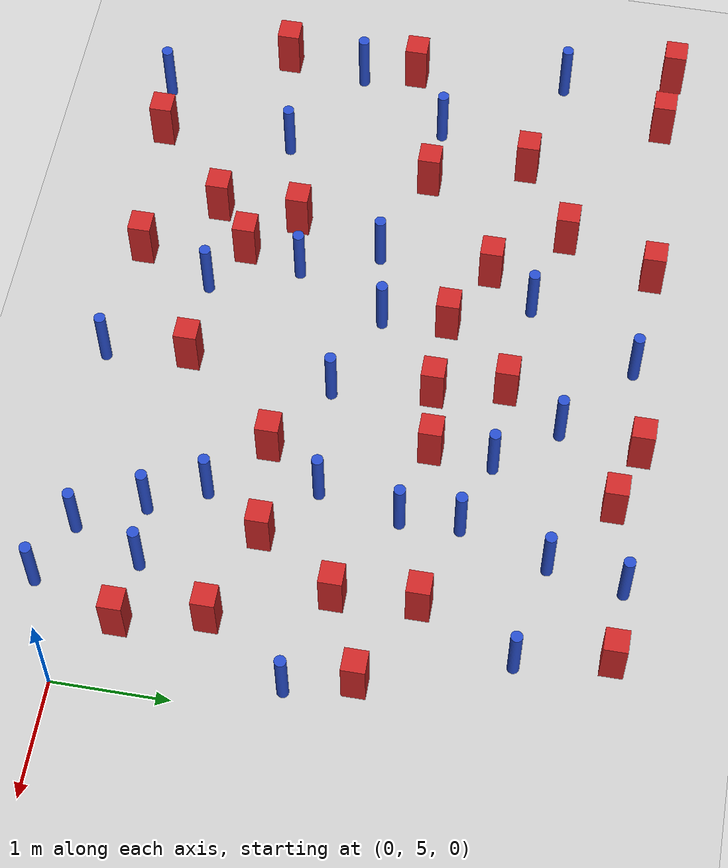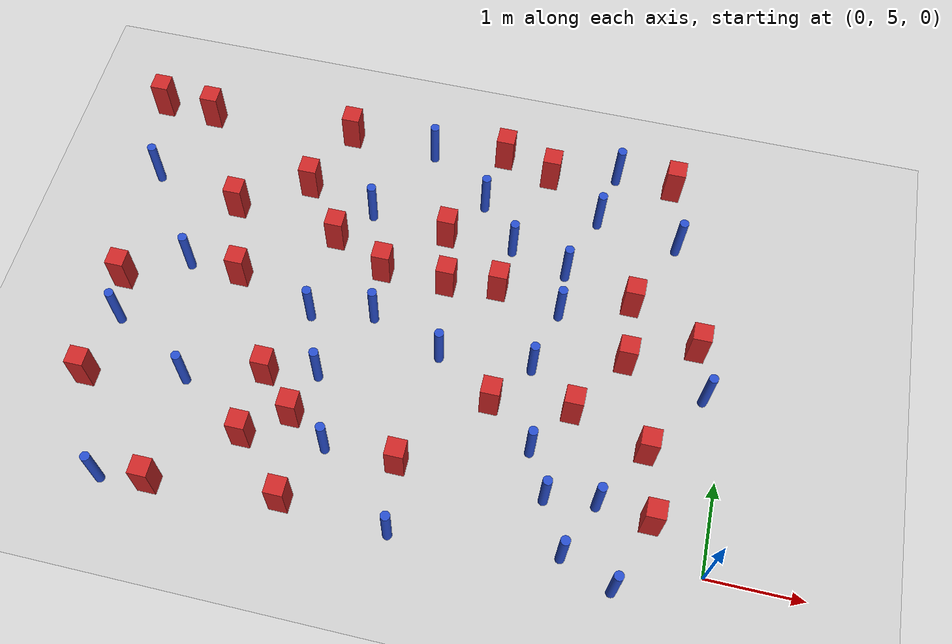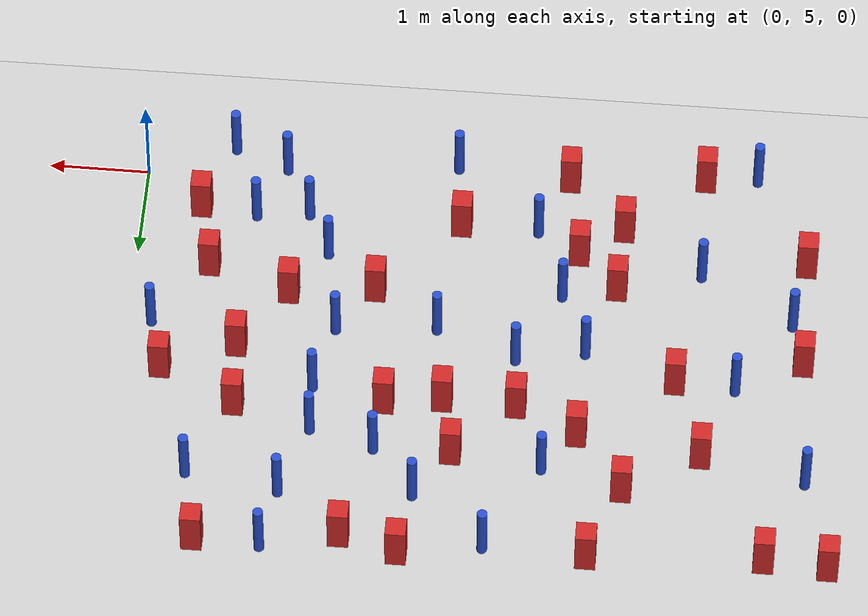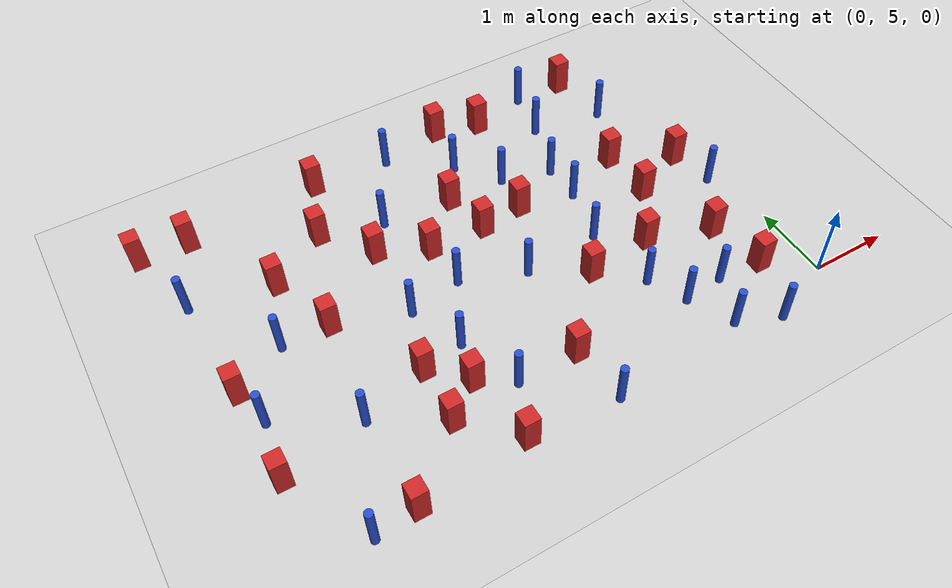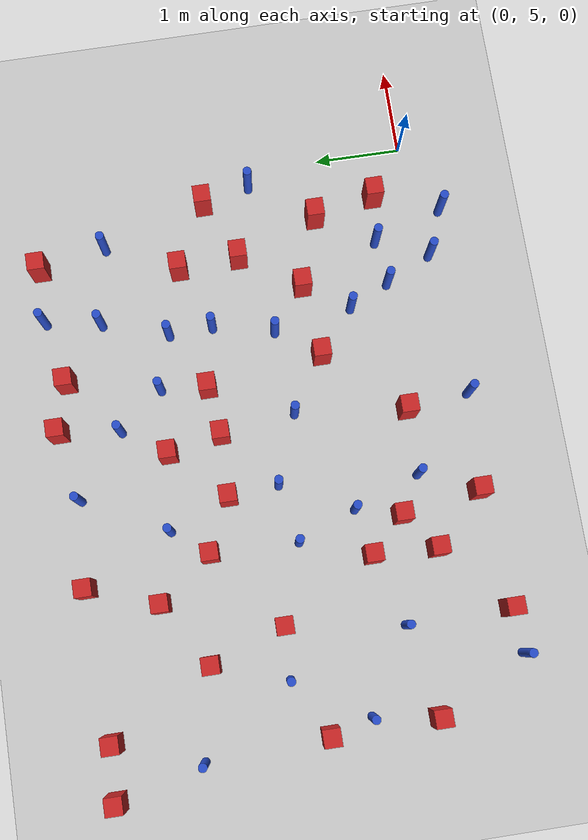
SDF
<sdf version="1.6">
 <world name="default">
  <model name="ground_plane">
   <static>1</static>
   <link name="link">
    <collision name="collision">
     <geometry><plane><normal>0 0 1</normal><size>100 100</size></plane></geometry>
     <surface><friction><ode><mu>100</mu><mu2>50</mu2></ode></friction></surface>
    </collision>
    <visual name="visual">
     <cast_shadows>0</cast_shadows>
     <geometry><plane><normal>0 0 1</normal><size>100 100</size></plane></geometry>
     <material>
      <ambient>1.0 1.0 1.0 1.0</ambient>
      <diffuse>0.8 0.8 0.8 1.0</diffuse>
      <specular>0.01 0.01 0.01 1.000000</specular>
     </material>
    </visual>
   </link>
  </model>
  <model name="square_post_obstacle7">
   <static>true</static>
   <pose>-3.18490612151 5.45710141778 8.22691968438e-08 7.2212513382e-06 -7.54495500217e-07 2.29674213826e-05</pose>
   <link name="link">
    <pose>0 0 0.25 0 -0 0</pose>
    <inertial>
     <mass>100</mass>
     <inertia>
      <ixx>0.166667</ixx>
      <ixy>0</ixy>
      <ixz>0</ixz>
      <iyy>0.166667</iyy>
      <iyz>0</iyz>
      <izz>0.166667</izz>
     </inertia>
    </inertial>
    <collision name="collision"><geometry><box><size>.2 .2 .5</size></box></geometry></collision>
    <visual name="visual">
     <geometry><box><size>.2 .2 .5</size></box></geometry>
     <material>
      <script><name>Gazebo/Red</name><uri>file://media/materials/scripts/gazebo.material</uri></script>
     </material>
    </visual>
   </link>
  </model>
  <model name="pole_obstacle12">
   <static>true</static>
   <pose>-4.51238808588 6.91465954027 2.88873142074e-08 -9.90536690842e-09 4.60219948965e-07 -1.20965994976e-07</pose>
   <link name="link">
    <pose>0 0 0.3 0 -0 0</pose>
    <inertial>
     <mass>1</mass>
     <inertia><ixx>0.145833</ixx><ixy>0</ixy><ixz>0</ixz><iyy>0.145833</iyy><iyz>0</iyz><izz>0.125</izz></inertia>
    </inertial>
    <collision name="collision">
     <geometry><cylinder><radius>0.05</radius><length>.6</length></cylinder></geometry>
    </collision>
    <visual name="visual">
     <geometry><cylinder><radius>0.05</radius><length>.6</length></cylinder></geometry>
     <material>
      <script><name>Gazebo/Blue</name><uri>file://media/materials/scripts/gazebo.material</uri></script>
     </material>
    </visual>
   </link>
  </model>
  <model name="square_post_obstacle11">
   <static>true</static>
   <pose>-4.77294782789 6.12462076641 8.22691968438e-08 7.22125133819e-06 -7.54495500217e-07 2.29674213826e-05</pose>
   <link name="link">
    <pose>0 0 0.25 0 -0 0</pose>
    <inertial>
     <mass>100</mass>
     <inertia>
      <ixx>0.166667</ixx>
      <ixy>0</ixy>
      <ixz>0</ixz>
      <iyy>0.166667</iyy>
      <iyz>0</iyz>
      <izz>0.166667</izz>
     </inertia>
    </inertial>
    <collision name="collision"><geometry><box><size>.2 .2 .5</size></box></geometry></collision>
    <visual name="visual">
     <geometry><box><size>.2 .2 .5</size></box></geometry>
     <material>
      <script><name>Gazebo/Red</name><uri>file://media/materials/scripts/gazebo.material</uri></script>
     </material>
    </visual>
   </link>
  </model>
  <model name="square_post_obstacle14">
   <static>true</static>
   <pose>-1.09752809713 7.11037284379 8.22691968438e-08 7.2212513382e-06 -7.54495500217e-07 2.29674213826e-05</pose>
   <link name="link">
    <pose>0 0 0.25 0 -0 0</pose>
    <inertial>
     <mass>100</mass>
     <inertia>
      <ixx>0.166667</ixx>
      <ixy>0</ixy>
      <ixz>0</ixz>
      <iyy>0.166667</iyy>
      <iyz>0</iyz>
      <izz>0.166667</izz>
     </inertia>
    </inertial>
    <collision name="collision"><geometry><box><size>.2 .2 .5</size></box></geometry></collision>
    <visual name="visual">
     <geometry><box><size>.2 .2 .5</size></box></geometry>
     <material>
      <script><name>Gazebo/Red</name><uri>file://media/materials/scripts/gazebo.material</uri></script>
     </material>
    </visual>
   </link>
  </model>
  <model name="pole_obstacle33">
   <static>true</static>
   <pose>-3.09936529219 4.72296170084 2.88873142074e-08 -9.90536689859e-09 4.60219948989e-07 -1.20965994961e-07</pose>
   <link name="link">
    <pose>0 0 0.3 0 -0 0</pose>
    <inertial>
     <mass>1</mass>
     <inertia><ixx>0.145833</ixx><ixy>0</ixy><ixz>0</ixz><iyy>0.145833</iyy><iyz>0</iyz><izz>0.125</izz></inertia>
    </inertial>
    <collision name="collision">
     <geometry><cylinder><radius>0.05</radius><length>.6</length></cylinder></geometry>
    </collision>
    <visual name="visual">
     <geometry><cylinder><radius>0.05</radius><length>.6</length></cylinder></geometry>
     <material>
      <script><name>Gazebo/Blue</name><uri>file://media/materials/scripts/gazebo.material</uri></script>
     </material>
    </visual>
   </link>
  </model>
  <model name="pole_obstacle35">
   <static>true</static>
   <pose>-1.39172180063 4.8766050014 2.88873142074e-08 -9.90536689852e-09 4.60219948989e-07 -1.2096599496e-07</pose>
   <link name="link">
    <pose>0 0 0.3 0 -0 0</pose>
    <inertial>
     <mass>1</mass>
     <inertia><ixx>0.145833</ixx><ixy>0</ixy><ixz>0</ixz><iyy>0.145833</iyy><iyz>0</iyz><izz>0.125</izz></inertia>
    </inertial>
    <collision name="collision">
     <geometry><cylinder><radius>0.05</radius><length>.6</length></cylinder></geometry>
    </collision>
    <visual name="visual">
     <geometry><cylinder><radius>0.05</radius><length>.6</length></cylinder></geometry>
     <material>
      <script><name>Gazebo/Blue</name><uri>file://media/materials/scripts/gazebo.material</uri></script>
     </material>
    </visual>
   </link>
  </model>
  <model name="pole_obstacle43">
   <static>true</static>
   <pose>-3.83528672196 7.04657121452 2.88873142074e-08 -9.90536692062e-09 4.60219948937e-07 -1.20965994985e-07</pose>
   <link name="link">
    <pose>0 0 0.3 0 -0 0</pose>
    <inertial>
     <mass>1</mass>
     <inertia><ixx>0.145833</ixx><ixy>0</ixy><ixz>0</ixz><iyy>0.145833</iyy><iyz>0</iyz><izz>0.125</izz></inertia>
    </inertial>
    <collision name="collision">
     <geometry><cylinder><radius>0.05</radius><length>.6</length></cylinder></geometry>
    </collision>
    <visual name="visual">
     <geometry><cylinder><radius>0.05</radius><length>.6</length></cylinder></geometry>
     <material>
      <script><name>Gazebo/Blue</name><uri>file://media/materials/scripts/gazebo.material</uri></script>
     </material>
    </visual>
   </link>
  </model>
  <model name="square_post_obstacle37">
   <static>true</static>
   <pose>-6.64771263384 6.89882902871 8.22691968438e-08 7.2212513382e-06 -7.54495500217e-07 2.29674213826e-05</pose>
   <link name="link">
    <pose>0 0 0.25 0 -0 0</pose>
    <inertial>
     <mass>100</mass>
     <inertia>
      <ixx>0.166667</ixx>
      <ixy>0</ixy>
      <ixz>0</ixz>
      <iyy>0.166667</iyy>
      <iyz>0</iyz>
      <izz>0.166667</izz>
     </inertia>
    </inertial>
    <collision name="collision"><geometry><box><size>.2 .2 .5</size></box></geometry></collision>
    <visual name="visual">
     <geometry><box><size>.2 .2 .5</size></box></geometry>
     <material>
      <script><name>Gazebo/Red</name><uri>file://media/materials/scripts/gazebo.material</uri></script>
     </material>
    </visual>
   </link>
  </model>
  <model name="pole_obstacle54">
   <static>true</static>
   <pose>-3.04042714223 6.7399696011 2.88873142074e-08 -9.90536689859e-09 4.60219948989e-07 -1.20965994961e-07</pose>
   <link name="link">
    <pose>0 0 0.3 0 -0 0</pose>
    <inertial>
     <mass>1</mass>
     <inertia><ixx>0.145833</ixx><ixy>0</ixy><ixz>0</ixz><iyy>0.145833</iyy><iyz>0</iyz><izz>0.125</izz></inertia>
    </inertial>
    <collision name="collision">
     <geometry><cylinder><radius>0.05</radius><length>.6</length></cylinder></geometry>
    </collision>
    <visual name="visual">
     <geometry><cylinder><radius>0.05</radius><length>.6</length></cylinder></geometry>
     <material>
      <script><name>Gazebo/Blue</name><uri>file://media/materials/scripts/gazebo.material</uri></script>
     </material>
    </visual>
   </link>
  </model>
  <model name="square_post_obstacle41">
   <static>true</static>
   <pose>-3.16131381034 7.61083727606 8.22691968438e-08 7.2212513382e-06 -7.54495500217e-07 2.29674213826e-05</pose>
   <link name="link">
    <pose>0 0 0.25 0 -0 0</pose>
    <inertial>
     <mass>100</mass>
     <inertia>
      <ixx>0.166667</ixx>
      <ixy>0</ixy>
      <ixz>0</ixz>
      <iyy>0.166667</iyy>
      <iyz>0</iyz>
      <izz>0.166667</izz>
     </inertia>
    </inertial>
    <collision name="collision"><geometry><box><size>.2 .2 .5</size></box></geometry></collision>
    <visual name="visual">
     <geometry><box><size>.2 .2 .5</size></box></geometry>
     <material>
      <script><name>Gazebo/Red</name><uri>file://media/materials/scripts/gazebo.material</uri></script>
     </material>
    </visual>
   </link>
  </model>
  <model name="pole_obstacle59">
   <static>true</static>
   <pose>-1.90369599812 8.03941260655 2.88873142074e-08 -9.90536689535e-09 4.60219948996e-07 -1.20965994956e-07</pose>
   <link name="link">
    <pose>0 0 0.3 0 -0 0</pose>
    <inertial>
     <mass>1</mass>
     <inertia><ixx>0.145833</ixx><ixy>0</ixy><ixz>0</ixz><iyy>0.145833</iyy><iyz>0</iyz><izz>0.125</izz></inertia>
    </inertial>
    <collision name="collision">
     <geometry><cylinder><radius>0.05</radius><length>.6</length></cylinder></geometry>
    </collision>
    <visual name="visual">
     <geometry><cylinder><radius>0.05</radius><length>.6</length></cylinder></geometry>
     <material>
      <script><name>Gazebo/Blue</name><uri>file://media/materials/scripts/gazebo.material</uri></script>
     </material>
    </visual>
   </link>
  </model>
  <model name="square_post_obstacle46">
   <static>true</static>
   <pose>-4.49032326442 7.92162597842 8.22691968438e-08 7.22125133819e-06 -7.54495500217e-07 2.29674213826e-05</pose>
   <link name="link">
    <pose>0 0 0.25 0 -0 0</pose>
    <inertial>
     <mass>100</mass>
     <inertia>
      <ixx>0.166667</ixx>
      <ixy>0</ixy>
      <ixz>0</ixz>
      <iyy>0.166667</iyy>
      <iyz>0</iyz>
      <izz>0.166667</izz>
     </inertia>
    </inertial>
    <collision name="collision"><geometry><box><size>.2 .2 .5</size></box></geometry></collision>
    <visual name="visual">
     <geometry><box><size>.2 .2 .5</size></box></geometry>
     <material>
      <script><name>Gazebo/Red</name><uri>file://media/materials/scripts/gazebo.material</uri></script>
     </material>
    </visual>
   </link>
  </model>
  <model name="square_post_obstacle54">
   <static>true</static>
   <pose>-0.90291956021 9.43107449804 8.22691968438e-08 7.22125133819e-06 -7.54495500217e-07 2.29674213826e-05</pose>
   <link name="link">
    <pose>0 0 0.25 0 -0 0</pose>
    <inertial>
     <mass>100</mass>
     <inertia>
      <ixx>0.166667</ixx>
      <ixy>0</ixy>
      <ixz>0</ixz>
      <iyy>0.166667</iyy>
      <iyz>0</iyz>
      <izz>0.166667</izz>
     </inertia>
    </inertial>
    <collision name="collision"><geometry><box><size>.2 .2 .5</size></box></geometry></collision>
    <visual name="visual">
     <geometry><box><size>.2 .2 .5</size></box></geometry>
     <material>
      <script><name>Gazebo/Red</name><uri>file://media/materials/scripts/gazebo.material</uri></script>
     </material>
    </visual>
   </link>
  </model>
  <model name="square_post_obstacle55">
   <static>true</static>
   <pose>-5.70569505835 8.08036171326 8.22691968438e-08 7.22125133819e-06 -7.54495500217e-07 2.29674213826e-05</pose>
   <link name="link">
    <pose>0 0 0.25 0 -0 0</pose>
    <inertial>
     <mass>100</mass>
     <inertia>
      <ixx>0.166667</ixx>
      <ixy>0</ixy>
      <ixz>0</ixz>
      <iyy>0.166667</iyy>
      <iyz>0</iyz>
      <izz>0.166667</izz>
     </inertia>
    </inertial>
    <collision name="collision"><geometry><box><size>.2 .2 .5</size></box></geometry></collision>
    <visual name="visual">
     <geometry><box><size>.2 .2 .5</size></box></geometry>
     <material>
      <script><name>Gazebo/Red</name><uri>file://media/materials/scripts/gazebo.material</uri></script>
     </material>
    </visual>
   </link>
  </model>
  <model name="square_post_obstacle59">
   <static>true</static>
   <pose>-6.62776394424 5.68750478584 8.22691968438e-08 7.2212513382e-06 -7.54495500217e-07 2.29674213826e-05</pose>
   <link name="link">
    <pose>0 0 0.25 0 -0 0</pose>
    <inertial>
     <mass>100</mass>
     <inertia>
      <ixx>0.166667</ixx>
      <ixy>0</ixy>
      <ixz>0</ixz>
      <iyy>0.166667</iyy>
      <iyz>0</iyz>
      <izz>0.166667</izz>
     </inertia>
    </inertial>
    <collision name="collision"><geometry><box><size>.2 .2 .5</size></box></geometry></collision>
    <visual name="visual">
     <geometry><box><size>.2 .2 .5</size></box></geometry>
     <material>
      <script><name>Gazebo/Red</name><uri>file://media/materials/scripts/gazebo.material</uri></script>
     </material>
    </visual>
   </link>
  </model>
  <model name="square_post_obstacle60">
   <static>true</static>
   <pose>-1.54926674919 6.42020498081 8.22691968438e-08 7.2212513382e-06 -7.54495500217e-07 2.29674213826e-05</pose>
   <link name="link">
    <pose>0 0 0.25 0 -0 0</pose>
    <inertial>
     <mass>100</mass>
     <inertia>
      <ixx>0.166667</ixx>
      <ixy>0</ixy>
      <ixz>0</ixz>
      <iyy>0.166667</iyy>
      <iyz>0</iyz>
      <izz>0.166667</izz>
     </inertia>
    </inertial>
    <collision name="collision"><geometry><box><size>.2 .2 .5</size></box></geometry></collision>
    <visual name="visual">
     <geometry><box><size>.2 .2 .5</size></box></geometry>
     <material>
      <script><name>Gazebo/Red</name><uri>file://media/materials/scripts/gazebo.material</uri></script>
     </material>
    </visual>
   </link>
  </model>
  <model name="square_post_obstacle61">
   <static>true</static>
   <pose>-2.86738119682 9.43937926465 8.22691968438e-08 7.22125133819e-06 -7.54495500217e-07 2.29674213826e-05</pose>
   <link name="link">
    <pose>0 0 0.25 0 -0 0</pose>
    <inertial>
     <mass>100</mass>
     <inertia>
      <ixx>0.166667</ixx>
      <ixy>0</ixy>
      <ixz>0</ixz>
      <iyy>0.166667</iyy>
      <iyz>0</iyz>
      <izz>0.166667</izz>
     </inertia>
    </inertial>
    <collision name="collision"><geometry><box><size>.2 .2 .5</size></box></geometry></collision>
    <visual name="visual">
     <geometry><box><size>.2 .2 .5</size></box></geometry>
     <material>
      <script><name>Gazebo/Red</name><uri>file://media/materials/scripts/gazebo.material</uri></script>
     </material>
    </visual>
   </link>
  </model>
  <model name="square_post_obstacle64">
   <static>true</static>
   <pose>-0.58256946391 5.42270488438 8.22691968438e-08 7.2212513382e-06 -7.54495500217e-07 2.29674213826e-05</pose>
   <link name="link">
    <pose>0 0 0.25 0 -0 0</pose>
    <inertial>
     <mass>100</mass>
     <inertia>
      <ixx>0.166667</ixx>
      <ixy>0</ixy>
      <ixz>0</ixz>
      <iyy>0.166667</iyy>
      <iyz>0</iyz>
      <izz>0.166667</izz>
     </inertia>
    </inertial>
    <collision name="collision"><geometry><box><size>.2 .2 .5</size></box></geometry></collision>
    <visual name="visual">
     <geometry><box><size>.2 .2 .5</size></box></geometry>
     <material>
      <script><name>Gazebo/Red</name><uri>file://media/materials/scripts/gazebo.material</uri></script>
     </material>
    </visual>
   </link>
  </model>
  <model name="pole_obstacle75">
   <static>true</static>
   <pose>-6.52229988892 6.41279829206 2.88873142074e-08 -9.90536690842e-09 4.60219948965e-07 -1.20965994976e-07</pose>
   <link name="link">
    <pose>0 0 0.3 0 -0 0</pose>
    <inertial>
     <mass>1</mass>
     <inertia><ixx>0.145833</ixx><ixy>0</ixy><ixz>0</ixz><iyy>0.145833</iyy><iyz>0</iyz><izz>0.125</izz></inertia>
    </inertial>
    <collision name="collision">
     <geometry><cylinder><radius>0.05</radius><length>.6</length></cylinder></geometry>
    </collision>
    <visual name="visual">
     <geometry><cylinder><radius>0.05</radius><length>.6</length></cylinder></geometry>
     <material>
      <script><name>Gazebo/Blue</name><uri>file://media/materials/scripts/gazebo.material</uri></script>
     </material>
    </visual>
   </link>
  </model>
  <model name="square_post_obstacle65">
   <static>true</static>
   <pose>-3.29305096793 8.23116070725 8.22691968438e-08 7.2212513382e-06 -7.54495500217e-07 2.29674213826e-05</pose>
   <link name="link">
    <pose>0 0 0.25 0 -0 0</pose>
    <inertial>
     <mass>100</mass>
     <inertia>
      <ixx>0.166667</ixx>
      <ixy>0</ixy>
      <ixz>0</ixz>
      <iyy>0.166667</iyy>
      <iyz>0</iyz>
      <izz>0.166667</izz>
     </inertia>
    </inertial>
    <collision name="collision"><geometry><box><size>.2 .2 .5</size></box></geometry></collision>
    <visual name="visual">
     <geometry><box><size>.2 .2 .5</size></box></geometry>
     <material>
      <script><name>Gazebo/Red</name><uri>file://media/materials/scripts/gazebo.material</uri></script>
     </material>
    </visual>
   </link>
  </model>
  <model name="pole_obstacle79">
   <static>true</static>
   <pose>-0.750812654246 8.64976022712 2.88873142074e-08 -9.90536690779e-09 4.60219948967e-07 -1.20965994975e-07</pose>
   <link name="link">
    <pose>0 0 0.3 0 -0 0</pose>
    <inertial>
     <mass>1</mass>
     <inertia><ixx>0.145833</ixx><ixy>0</ixy><ixz>0</ixz><iyy>0.145833</iyy><iyz>0</iyz><izz>0.125</izz></inertia>
    </inertial>
    <collision name="collision">
     <geometry><cylinder><radius>0.05</radius><length>.6</length></cylinder></geometry>
    </collision>
    <visual name="visual">
     <geometry><cylinder><radius>0.05</radius><length>.6</length></cylinder></geometry>
     <material>
      <script><name>Gazebo/Blue</name><uri>file://media/materials/scripts/gazebo.material</uri></script>
     </material>
    </visual>
   </link>
  </model>
  <model name="square_post_obstacle82">
   <static>true</static>
   <pose>-0.376258562271 7.42713256255 8.22691968438e-08 7.22125133819e-06 -7.54495500217e-07 2.29674213826e-05</pose>
   <link name="link">
    <pose>0 0 0.25 0 -0 0</pose>
    <inertial>
     <mass>100</mass>
     <inertia>
      <ixx>0.166667</ixx>
      <ixy>0</ixy>
      <ixz>0</ixz>
      <iyy>0.166667</iyy>
      <iyz>0</iyz>
      <izz>0.166667</izz>
     </inertia>
    </inertial>
    <collision name="collision"><geometry><box><size>.2 .2 .5</size></box></geometry></collision>
    <visual name="visual">
     <geometry><box><size>.2 .2 .5</size></box></geometry>
     <material>
      <script><name>Gazebo/Red</name><uri>file://media/materials/scripts/gazebo.material</uri></script>
     </material>
    </visual>
   </link>
  </model>
  <model name="square_post_obstacle84">
   <static>true</static>
   <pose>-0.736263570764 6.14557349936 8.22691968438e-08 7.2212513382e-06 -7.54495500217e-07 2.29674213826e-05</pose>
   <link name="link">
    <pose>0 0 0.25 0 -0 0</pose>
    <inertial>
     <mass>100</mass>
     <inertia>
      <ixx>0.166667</ixx>
      <ixy>0</ixy>
      <ixz>0</ixz>
      <iyy>0.166667</iyy>
      <iyz>0</iyz>
      <izz>0.166667</izz>
     </inertia>
    </inertial>
    <collision name="collision"><geometry><box><size>.2 .2 .5</size></box></geometry></collision>
    <visual name="visual">
     <geometry><box><size>.2 .2 .5</size></box></geometry>
     <material>
      <script><name>Gazebo/Red</name><uri>file://media/materials/scripts/gazebo.material</uri></script>
     </material>
    </visual>
   </link>
  </model>
  <model name="square_post_obstacle87">
   <static>true</static>
   <pose>-2.59598756087 7.68108137748 8.22691968438e-08 7.2212513382e-06 -7.54495500217e-07 2.29674213826e-05</pose>
   <link name="link">
    <pose>0 0 0.25 0 -0 0</pose>
    <inertial>
     <mass>100</mass>
     <inertia>
      <ixx>0.166667</ixx>
      <ixy>0</ixy>
      <ixz>0</ixz>
      <iyy>0.166667</iyy>
      <iyz>0</iyz>
      <izz>0.166667</izz>
     </inertia>
    </inertial>
    <collision name="collision"><geometry><box><size>.2 .2 .5</size></box></geometry></collision>
    <visual name="visual">
     <geometry><box><size>.2 .2 .5</size></box></geometry>
     <material>
      <script><name>Gazebo/Red</name><uri>file://media/materials/scripts/gazebo.material</uri></script>
     </material>
    </visual>
   </link>
  </model>
  <model name="square_post_obstacle91">
   <static>true</static>
   <pose>-2.30003290267 9.28111467215 8.22691968438e-08 7.22125133819e-06 -7.54495500217e-07 2.29674213826e-05</pose>
   <link name="link">
    <pose>0 0 0.25 0 -0 0</pose>
    <inertial>
     <mass>100</mass>
     <inertia>
      <ixx>0.166667</ixx>
      <ixy>0</ixy>
      <ixz>0</ixz>
      <iyy>0.166667</iyy>
      <iyz>0</iyz>
      <izz>0.166667</izz>
     </inertia>
    </inertial>
    <collision name="collision"><geometry><box><size>.2 .2 .5</size></box></geometry></collision>
    <visual name="visual">
     <geometry><box><size>.2 .2 .5</size></box></geometry>
     <material>
      <script><name>Gazebo/Red</name><uri>file://media/materials/scripts/gazebo.material</uri></script>
     </material>
    </visual>
   </link>
  </model>
  <model name="pole_obstacle102">
   <static>true</static>
   <pose>-1.66503251988 8.80168594534 2.88873142074e-08 -9.90536690474e-09 4.60219948974e-07 -1.2096599497e-07</pose>
   <link name="link">
    <pose>0 0 0.3 0 -0 0</pose>
    <inertial>
     <mass>1</mass>
     <inertia><ixx>0.145833</ixx><ixy>0</ixy><ixz>0</ixz><iyy>0.145833</iyy><iyz>0</iyz><izz>0.125</izz></inertia>
    </inertial>
    <collision name="collision">
     <geometry><cylinder><radius>0.05</radius><length>.6</length></cylinder></geometry>
    </collision>
    <visual name="visual">
     <geometry><cylinder><radius>0.05</radius><length>.6</length></cylinder></geometry>
     <material>
      <script><name>Gazebo/Blue</name><uri>file://media/materials/scripts/gazebo.material</uri></script>
     </material>
    </visual>
   </link>
  </model>
  <model name="pole_obstacle103">
   <static>true</static>
   <pose>-3.67997931078 9.29445428029 2.88873142074e-08 -9.90536692318e-09 4.6021994893e-07 -1.20965994988e-07</pose>
   <link name="link">
    <pose>0 0 0.3 0 -0 0</pose>
    <inertial>
     <mass>1</mass>
     <inertia><ixx>0.145833</ixx><ixy>0</ixy><ixz>0</ixz><iyy>0.145833</iyy><iyz>0</iyz><izz>0.125</izz></inertia>
    </inertial>
    <collision name="collision">
     <geometry><cylinder><radius>0.05</radius><length>.6</length></cylinder></geometry>
    </collision>
    <visual name="visual">
     <geometry><cylinder><radius>0.05</radius><length>.6</length></cylinder></geometry>
     <material>
      <script><name>Gazebo/Blue</name><uri>file://media/materials/scripts/gazebo.material</uri></script>
     </material>
    </visual>
   </link>
  </model>
  <model name="pole_obstacle108">
   <static>true</static>
   <pose>-6.72905532368 8.29632247939 2.88873142074e-08 -9.9053668967e-09 4.60219948993e-07 -1.20965994957e-07</pose>
   <link name="link">
    <pose>0 0 0.3 0 -0 0</pose>
    <inertial>
     <mass>1</mass>
     <inertia><ixx>0.145833</ixx><ixy>0</ixy><ixz>0</ixz><iyy>0.145833</iyy><iyz>0</iyz><izz>0.125</izz></inertia>
    </inertial>
    <collision name="collision">
     <geometry><cylinder><radius>0.05</radius><length>.6</length></cylinder></geometry>
    </collision>
    <visual name="visual">
     <geometry><cylinder><radius>0.05</radius><length>.6</length></cylinder></geometry>
     <material>
      <script><name>Gazebo/Blue</name><uri>file://media/materials/scripts/gazebo.material</uri></script>
     </material>
    </visual>
   </link>
  </model>
  <model name="square_post_obstacle103">
   <static>true</static>
   <pose>-1.13439898009 7.81877358647 8.22691968438e-08 7.2212513382e-06 -7.54495500217e-07 2.29674213826e-05</pose>
   <link name="link">
    <pose>0 0 0.25 0 -0 0</pose>
    <inertial>
     <mass>100</mass>
     <inertia>
      <ixx>0.166667</ixx>
      <ixy>0</ixy>
      <ixz>0</ixz>
      <iyy>0.166667</iyy>
      <iyz>0</iyz>
      <izz>0.166667</izz>
     </inertia>
    </inertial>
    <collision name="collision"><geometry><box><size>.2 .2 .5</size></box></geometry></collision>
    <visual name="visual">
     <geometry><box><size>.2 .2 .5</size></box></geometry>
     <material>
      <script><name>Gazebo/Red</name><uri>file://media/materials/scripts/gazebo.material</uri></script>
     </material>
    </visual>
   </link>
  </model>
  <model name="square_post_obstacle108">
   <static>true</static>
   <pose>-6.37411273884 9.25422953795 8.22691968438e-08 7.22125133819e-06 -7.54495500217e-07 2.29674213826e-05</pose>
   <link name="link">
    <pose>0 0 0.25 0 -0 0</pose>
    <inertial>
     <mass>100</mass>
     <inertia>
      <ixx>0.166667</ixx>
      <ixy>0</ixy>
      <ixz>0</ixz>
      <iyy>0.166667</iyy>
      <iyz>0</iyz>
      <izz>0.166667</izz>
     </inertia>
    </inertial>
    <collision name="collision"><geometry><box><size>.2 .2 .5</size></box></geometry></collision>
    <visual name="visual">
     <geometry><box><size>.2 .2 .5</size></box></geometry>
     <material>
      <script><name>Gazebo/Red</name><uri>file://media/materials/scripts/gazebo.material</uri></script>
     </material>
    </visual>
   </link>
  </model>
  <model name="square_post_obstacle114">
   <static>true</static>
   <pose>-2.39948569725 6.32961107113 8.22691968438e-08 7.2212513382e-06 -7.54495500217e-07 2.29674213826e-05</pose>
   <link name="link">
    <pose>0 0 0.25 0 -0 0</pose>
    <inertial>
     <mass>100</mass>
     <inertia>
      <ixx>0.166667</ixx>
      <ixy>0</ixy>
      <ixz>0</ixz>
      <iyy>0.166667</iyy>
      <iyz>0</iyz>
      <izz>0.166667</izz>
     </inertia>
    </inertial>
    <collision name="collision"><geometry><box><size>.2 .2 .5</size></box></geometry></collision>
    <visual name="visual">
     <geometry><box><size>.2 .2 .5</size></box></geometry>
     <material>
      <script><name>Gazebo/Red</name><uri>file://media/materials/scripts/gazebo.material</uri></script>
     </material>
    </visual>
   </link>
  </model>
  <model name="pole_obstacle121">
   <static>true</static>
   <pose>-1.13638935438 5.47817488217 2.88873142074e-08 -9.90536689852e-09 4.60219948989e-07 -1.2096599496e-07</pose>
   <link name="link">
    <pose>0 0 0.3 0 -0 0</pose>
    <inertial>
     <mass>1</mass>
     <inertia><ixx>0.145833</ixx><ixy>0</ixy><ixz>0</ixz><iyy>0.145833</iyy><iyz>0</iyz><izz>0.125</izz></inertia>
    </inertial>
    <collision name="collision">
     <geometry><cylinder><radius>0.05</radius><length>.6</length></cylinder></geometry>
    </collision>
    <visual name="visual">
     <geometry><cylinder><radius>0.05</radius><length>.6</length></cylinder></geometry>
     <material>
      <script><name>Gazebo/Blue</name><uri>file://media/materials/scripts/gazebo.material</uri></script>
     </material>
    </visual>
   </link>
  </model>
  <model name="pole_obstacle136">
   <static>true</static>
   <pose>-2.0473121817 6.81665363929 2.88873142074e-08 -9.90536689575e-09 4.60219948995e-07 -1.20965994956e-07</pose>
   <link name="link">
    <pose>0 0 0.3 0 -0 0</pose>
    <inertial>
     <mass>1</mass>
     <inertia><ixx>0.145833</ixx><ixy>0</ixy><ixz>0</ixz><iyy>0.145833</iyy><iyz>0</iyz><izz>0.125</izz></inertia>
    </inertial>
    <collision name="collision">
     <geometry><cylinder><radius>0.05</radius><length>.6</length></cylinder></geometry>
    </collision>
    <visual name="visual">
     <geometry><cylinder><radius>0.05</radius><length>.6</length></cylinder></geometry>
     <material>
      <script><name>Gazebo/Blue</name><uri>file://media/materials/scripts/gazebo.material</uri></script>
     </material>
    </visual>
   </link>
  </model>
  <model name="square_post_obstacle133">
   <static>true</static>
   <pose>-3.88188883588 7.62845853672 8.22691968438e-08 7.2212513382e-06 -7.54495500217e-07 2.29674213826e-05</pose>
   <link name="link">
    <pose>0 0 0.25 0 -0 0</pose>
    <inertial>
     <mass>100</mass>
     <inertia>
      <ixx>0.166667</ixx>
      <ixy>0</ixy>
      <ixz>0</ixz>
      <iyy>0.166667</iyy>
      <iyz>0</iyz>
      <izz>0.166667</izz>
     </inertia>
    </inertial>
    <collision name="collision"><geometry><box><size>.2 .2 .5</size></box></geometry></collision>
    <visual name="visual">
     <geometry><box><size>.2 .2 .5</size></box></geometry>
     <material>
      <script><name>Gazebo/Red</name><uri>file://media/materials/scripts/gazebo.material</uri></script>
     </material>
    </visual>
   </link>
  </model>
  <model name="square_post_obstacle136">
   <static>true</static>
   <pose>-4.96608952602 8.53806869895 8.22691968438e-08 7.22125133819e-06 -7.54495500217e-07 2.29674213826e-05</pose>
   <link name="link">
    <pose>0 0 0.25 0 -0 0</pose>
    <inertial>
     <mass>100</mass>
     <inertia>
      <ixx>0.166667</ixx>
      <ixy>0</ixy>
      <ixz>0</ixz>
      <iyy>0.166667</iyy>
      <iyz>0</iyz>
      <izz>0.166667</izz>
     </inertia>
    </inertial>
    <collision name="collision"><geometry><box><size>.2 .2 .5</size></box></geometry></collision>
    <visual name="visual">
     <geometry><box><size>.2 .2 .5</size></box></geometry>
     <material>
      <script><name>Gazebo/Red</name><uri>file://media/materials/scripts/gazebo.material</uri></script>
     </material>
    </visual>
   </link>
  </model>
  <model name="pole_obstacle145">
   <static>true</static>
   <pose>-0.852640996439 4.65924219216 2.88873142074e-08 -9.90536689661e-09 4.60219948993e-07 -1.20965994957e-07</pose>
   <link name="link">
    <pose>0 0 0.3 0 -0 0</pose>
    <inertial>
     <mass>1</mass>
     <inertia><ixx>0.145833</ixx><ixy>0</ixy><ixz>0</ixz><iyy>0.145833</iyy><iyz>0</iyz><izz>0.125</izz></inertia>
    </inertial>
    <collision name="collision">
     <geometry><cylinder><radius>0.05</radius><length>.6</length></cylinder></geometry>
    </collision>
    <visual name="visual">
     <geometry><cylinder><radius>0.05</radius><length>.6</length></cylinder></geometry>
     <material>
      <script><name>Gazebo/Blue</name><uri>file://media/materials/scripts/gazebo.material</uri></script>
     </material>
    </visual>
   </link>
  </model>
  <model name="pole_obstacle147">
   <static>true</static>
   <pose>-5.59689318954 5.87818766106 2.88873142074e-08 -9.90536690842e-09 4.60219948965e-07 -1.20965994976e-07</pose>
   <link name="link">
    <pose>0 0 0.3 0 -0 0</pose>
    <inertial>
     <mass>1</mass>
     <inertia><ixx>0.145833</ixx><ixy>0</ixy><ixz>0</ixz><iyy>0.145833</iyy><iyz>0</iyz><izz>0.125</izz></inertia>
    </inertial>
    <collision name="collision">
     <geometry><cylinder><radius>0.05</radius><length>.6</length></cylinder></geometry>
    </collision>
    <visual name="visual">
     <geometry><cylinder><radius>0.05</radius><length>.6</length></cylinder></geometry>
     <material>
      <script><name>Gazebo/Blue</name><uri>file://media/materials/scripts/gazebo.material</uri></script>
     </material>
    </visual>
   </link>
  </model>
  <model name="pole_obstacle154">
   <static>true</static>
   <pose>-5.99855222507 7.24153565401 2.88873142074e-08 -9.90536690842e-09 4.60219948965e-07 -1.20965994976e-07</pose>
   <link name="link">
    <pose>0 0 0.3 0 -0 0</pose>
    <inertial>
     <mass>1</mass>
     <inertia><ixx>0.145833</ixx><ixy>0</ixy><ixz>0</ixz><iyy>0.145833</iyy><iyz>0</iyz><izz>0.125</izz></inertia>
    </inertial>
    <collision name="collision">
     <geometry><cylinder><radius>0.05</radius><length>.6</length></cylinder></geometry>
    </collision>
    <visual name="visual">
     <geometry><cylinder><radius>0.05</radius><length>.6</length></cylinder></geometry>
     <material>
      <script><name>Gazebo/Blue</name><uri>file://media/materials/scripts/gazebo.material</uri></script>
     </material>
    </visual>
   </link>
  </model>
  <model name="square_post_obstacle153">
   <static>true</static>
   <pose>-4.80328032461 5.39168201844 8.22691968438e-08 7.2212513382e-06 -7.54495500217e-07 2.29674213826e-05</pose>
   <link name="link">
    <pose>0 0 0.25 0 -0 0</pose>
    <inertial>
     <mass>100</mass>
     <inertia>
      <ixx>0.166667</ixx>
      <ixy>0</ixy>
      <ixz>0</ixz>
      <iyy>0.166667</iyy>
      <iyz>0</iyz>
      <izz>0.166667</izz>
     </inertia>
    </inertial>
    <collision name="collision"><geometry><box><size>.2 .2 .5</size></box></geometry></collision>
    <visual name="visual">
     <geometry><box><size>.2 .2 .5</size></box></geometry>
     <material>
      <script><name>Gazebo/Red</name><uri>file://media/materials/scripts/gazebo.material</uri></script>
     </material>
    </visual>
   </link>
  </model>
  <model name="pole_obstacle159">
   <static>true</static>
   <pose>-2.53765433366 8.22223004001 2.88873142074e-08 -9.90536692318e-09 4.6021994893e-07 -1.20965994988e-07</pose>
   <link name="link">
    <pose>0 0 0.3 0 -0 0</pose>
    <inertial>
     <mass>1</mass>
     <inertia><ixx>0.145833</ixx><ixy>0</ixy><ixz>0</ixz><iyy>0.145833</iyy><iyz>0</iyz><izz>0.125</izz></inertia>
    </inertial>
    <collision name="collision">
     <geometry><cylinder><radius>0.05</radius><length>.6</length></cylinder></geometry>
    </collision>
    <visual name="visual">
     <geometry><cylinder><radius>0.05</radius><length>.6</length></cylinder></geometry>
     <material>
      <script><name>Gazebo/Blue</name><uri>file://media/materials/scripts/gazebo.material</uri></script>
     </material>
    </visual>
   </link>
  </model>
  <model name="pole_obstacle160">
   <static>true</static>
   <pose>-4.23919154404 6.23311835472 2.88873142074e-08 -9.90536690842e-09 4.60219948965e-07 -1.20965994976e-07</pose>
   <link name="link">
    <pose>0 0 0.3 0 -0 0</pose>
    <inertial>
     <mass>1</mass>
     <inertia><ixx>0.145833</ixx><ixy>0</ixy><ixz>0</ixz><iyy>0.145833</iyy><iyz>0</iyz><izz>0.125</izz></inertia>
    </inertial>
    <collision name="collision">
     <geometry><cylinder><radius>0.05</radius><length>.6</length></cylinder></geometry>
    </collision>
    <visual name="visual">
     <geometry><cylinder><radius>0.05</radius><length>.6</length></cylinder></geometry>
     <material>
      <script><name>Gazebo/Blue</name><uri>file://media/materials/scripts/gazebo.material</uri></script>
     </material>
    </visual>
   </link>
  </model>
  <model name="pole_obstacle164">
   <static>true</static>
   <pose>-3.9485358255 5.45798667298 2.88873142074e-08 -9.90536692062e-09 4.60219948937e-07 -1.20965994985e-07</pose>
   <link name="link">
    <pose>0 0 0.3 0 -0 0</pose>
    <inertial>
     <mass>1</mass>
     <inertia><ixx>0.145833</ixx><ixy>0</ixy><ixz>0</ixz><iyy>0.145833</iyy><iyz>0</iyz><izz>0.125</izz></inertia>
    </inertial>
    <collision name="collision">
     <geometry><cylinder><radius>0.05</radius><length>.6</length></cylinder></geometry>
    </collision>
    <visual name="visual">
     <geometry><cylinder><radius>0.05</radius><length>.6</length></cylinder></geometry>
     <material>
      <script><name>Gazebo/Blue</name><uri>file://media/materials/scripts/gazebo.material</uri></script>
     </material>
    </visual>
   </link>
  </model>
  <model name="square_post_obstacle164">
   <static>true</static>
   <pose>-4.22629339888 4.81146810448 8.22691968438e-08 7.2212513382e-06 -7.54495500217e-07 2.29674213826e-05</pose>
   <link name="link">
    <pose>0 0 0.25 0 -0 0</pose>
    <inertial>
     <mass>100</mass>
     <inertia>
      <ixx>0.166667</ixx>
      <ixy>0</ixy>
      <ixz>0</ixz>
      <iyy>0.166667</iyy>
      <iyz>0</iyz>
      <izz>0.166667</izz>
     </inertia>
    </inertial>
    <collision name="collision"><geometry><box><size>.2 .2 .5</size></box></geometry></collision>
    <visual name="visual">
     <geometry><box><size>.2 .2 .5</size></box></geometry>
     <material>
      <script><name>Gazebo/Red</name><uri>file://media/materials/scripts/gazebo.material</uri></script>
     </material>
    </visual>
   </link>
  </model>
  <model name="pole_obstacle168">
   <static>true</static>
   <pose>-1.55055750148 9.4493506908 2.88873142074e-08 -9.90536690474e-09 4.60219948974e-07 -1.2096599497e-07</pose>
   <link name="link">
    <pose>0 0 0.3 0 -0 0</pose>
    <inertial>
     <mass>1</mass>
     <inertia><ixx>0.145833</ixx><ixy>0</ixy><ixz>0</ixz><iyy>0.145833</iyy><iyz>0</iyz><izz>0.125</izz></inertia>
    </inertial>
    <collision name="collision">
     <geometry><cylinder><radius>0.05</radius><length>.6</length></cylinder></geometry>
    </collision>
    <visual name="visual">
     <geometry><cylinder><radius>0.05</radius><length>.6</length></cylinder></geometry>
     <material>
      <script><name>Gazebo/Blue</name><uri>file://media/materials/scripts/gazebo.material</uri></script>
     </material>
    </visual>
   </link>
  </model>
  <model name="square_post_obstacle175">
   <static>true</static>
   <pose>-4.67652242753 9.34246844943 8.22691968438e-08 7.22125133819e-06 -7.54495500217e-07 2.29674213826e-05</pose>
   <link name="link">
    <pose>0 0 0.25 0 -0 0</pose>
    <inertial>
     <mass>100</mass>
     <inertia>
      <ixx>0.166667</ixx>
      <ixy>0</ixy>
      <ixz>0</ixz>
      <iyy>0.166667</iyy>
      <iyz>0</iyz>
      <izz>0.166667</izz>
     </inertia>
    </inertial>
    <collision name="collision"><geometry><box><size>.2 .2 .5</size></box></geometry></collision>
    <visual name="visual">
     <geometry><box><size>.2 .2 .5</size></box></geometry>
     <material>
      <script><name>Gazebo/Red</name><uri>file://media/materials/scripts/gazebo.material</uri></script>
     </material>
    </visual>
   </link>
  </model>
  <model name="square_post_obstacle176">
   <static>true</static>
   <pose>-5.57595814609 4.69829122581 8.22691968438e-08 7.22125133819e-06 -7.54495500217e-07 2.29674213826e-05</pose>
   <link name="link">
    <pose>0 0 0.25 0 -0 0</pose>
    <inertial>
     <mass>100</mass>
     <inertia>
      <ixx>0.166667</ixx>
      <ixy>0</ixy>
      <ixz>0</ixz>
      <iyy>0.166667</iyy>
      <iyz>0</iyz>
      <izz>0.166667</izz>
     </inertia>
    </inertial>
    <collision name="collision"><geometry><box><size>.2 .2 .5</size></box></geometry></collision>
    <visual name="visual">
     <geometry><box><size>.2 .2 .5</size></box></geometry>
     <material>
      <script><name>Gazebo/Red</name><uri>file://media/materials/scripts/gazebo.material</uri></script>
     </material>
    </visual>
   </link>
  </model>
  <model name="pole_obstacle184">
   <static>true</static>
   <pose>-1.89315224316 5.89657216034 2.88873142074e-08 -9.90536689852e-09 4.60219948989e-07 -1.2096599496e-07</pose>
   <link name="link">
    <pose>0 0 0.3 0 -0 0</pose>
    <inertial>
     <mass>1</mass>
     <inertia><ixx>0.145833</ixx><ixy>0</ixy><ixz>0</ixz><iyy>0.145833</iyy><iyz>0</iyz><izz>0.125</izz></inertia>
    </inertial>
    <collision name="collision">
     <geometry><cylinder><radius>0.05</radius><length>.6</length></cylinder></geometry>
    </collision>
    <visual name="visual">
     <geometry><cylinder><radius>0.05</radius><length>.6</length></cylinder></geometry>
     <material>
      <script><name>Gazebo/Blue</name><uri>file://media/materials/scripts/gazebo.material</uri></script>
     </material>
    </visual>
   </link>
  </model>
  <model name="pole_obstacle185">
   <static>true</static>
   <pose>-1.66196351271 5.42284610359 2.88873142074e-08 -9.90536689852e-09 4.60219948989e-07 -1.2096599496e-07</pose>
   <link name="link">
    <pose>0 0 0.3 0 -0 0</pose>
    <inertial>
     <mass>1</mass>
     <inertia><ixx>0.145833</ixx><ixy>0</ixy><ixz>0</ixz><iyy>0.145833</iyy><iyz>0</iyz><izz>0.125</izz></inertia>
    </inertial>
    <collision name="collision">
     <geometry><cylinder><radius>0.05</radius><length>.6</length></cylinder></geometry>
    </collision>
    <visual name="visual">
     <geometry><cylinder><radius>0.05</radius><length>.6</length></cylinder></geometry>
     <material>
      <script><name>Gazebo/Blue</name><uri>file://media/materials/scripts/gazebo.material</uri></script>
     </material>
    </visual>
   </link>
  </model>
  <model name="square_post_obstacle184">
   <static>true</static>
   <pose>-6.98984938837 9.28989604136 8.22691968438e-08 7.22125133819e-06 -7.54495500217e-07 2.29674213826e-05</pose>
   <link name="link">
    <pose>0 0 0.25 0 -0 0</pose>
    <inertial>
     <mass>100</mass>
     <inertia>
      <ixx>0.166667</ixx>
      <ixy>0</ixy>
      <ixz>0</ixz>
      <iyy>0.166667</iyy>
      <iyz>0</iyz>
      <izz>0.166667</izz>
     </inertia>
    </inertial>
    <collision name="collision"><geometry><box><size>.2 .2 .5</size></box></geometry></collision>
    <visual name="visual">
     <geometry><box><size>.2 .2 .5</size></box></geometry>
     <material>
      <script><name>Gazebo/Red</name><uri>file://media/materials/scripts/gazebo.material</uri></script>
     </material>
    </visual>
   </link>
  </model>
  <model name="pole_obstacle188">
   <static>true</static>
   <pose>-0.229207702517 6.86552506728 2.88873142074e-08 -9.90536689703e-09 4.60219948992e-07 -1.20965994959e-07</pose>
   <link name="link">
    <pose>0 0 0.3 0 -0 0</pose>
    <inertial>
     <mass>1</mass>
     <inertia><ixx>0.145833</ixx><ixy>0</ixy><ixz>0</ixz><iyy>0.145833</iyy><iyz>0</iyz><izz>0.125</izz></inertia>
    </inertial>
    <collision name="collision">
     <geometry><cylinder><radius>0.05</radius><length>.6</length></cylinder></geometry>
    </collision>
    <visual name="visual">
     <geometry><cylinder><radius>0.05</radius><length>.6</length></cylinder></geometry>
     <material>
      <script><name>Gazebo/Blue</name><uri>file://media/materials/scripts/gazebo.material</uri></script>
     </material>
    </visual>
   </link>
  </model>
  <model name="square_post_obstacle200">
   <static>true</static>
   <pose>-4.37452287558 5.7229354629 8.22691968438e-08 7.2212513382e-06 -7.54495500217e-07 2.29674213826e-05</pose>
   <link name="link">
    <pose>0 0 0.25 0 -0 0</pose>
    <inertial>
     <mass>100</mass>
     <inertia>
      <ixx>0.166667</ixx>
      <ixy>0</ixy>
      <ixz>0</ixz>
      <iyy>0.166667</iyy>
      <iyz>0</iyz>
      <izz>0.166667</izz>
     </inertia>
    </inertial>
    <collision name="collision"><geometry><box><size>.2 .2 .5</size></box></geometry></collision>
    <visual name="visual">
     <geometry><box><size>.2 .2 .5</size></box></geometry>
     <material>
      <script><name>Gazebo/Red</name><uri>file://media/materials/scripts/gazebo.material</uri></script>
     </material>
    </visual>
   </link>
  </model>
  <model name="pole_obstacle193">
   <static>true</static>
   <pose>-6.09072567738 4.63873175846 2.88873142074e-08 -9.90536690842e-09 4.60219948965e-07 -1.20965994976e-07</pose>
   <link name="link">
    <pose>0 0 0.3 0 -0 0</pose>
    <inertial>
     <mass>1</mass>
     <inertia><ixx>0.145833</ixx><ixy>0</ixy><ixz>0</ixz><iyy>0.145833</iyy><iyz>0</iyz><izz>0.125</izz></inertia>
    </inertial>
    <collision name="collision">
     <geometry><cylinder><radius>0.05</radius><length>.6</length></cylinder></geometry>
    </collision>
    <visual name="visual">
     <geometry><cylinder><radius>0.05</radius><length>.6</length></cylinder></geometry>
     <material>
      <script><name>Gazebo/Blue</name><uri>file://media/materials/scripts/gazebo.material</uri></script>
     </material>
    </visual>
   </link>
  </model>
  <model name="pole_obstacle197">
   <static>true</static>
   <pose>-1.88492206539 7.52995328937 2.88873142074e-08 -9.90536689852e-09 4.60219948989e-07 -1.2096599496e-07</pose>
   <link name="link">
    <pose>0 0 0.3 0 -0 0</pose>
    <inertial>
     <mass>1</mass>
     <inertia><ixx>0.145833</ixx><ixy>0</ixy><ixz>0</ixz><iyy>0.145833</iyy><iyz>0</iyz><izz>0.125</izz></inertia>
    </inertial>
    <collision name="collision">
     <geometry><cylinder><radius>0.05</radius><length>.6</length></cylinder></geometry>
    </collision>
    <visual name="visual">
     <geometry><cylinder><radius>0.05</radius><length>.6</length></cylinder></geometry>
     <material>
      <script><name>Gazebo/Blue</name><uri>file://media/materials/scripts/gazebo.material</uri></script>
     </material>
    </visual>
   </link>
  </model>
  <model name="pole_obstacle207">
   <static>true</static>
   <pose>-2.96117926142 8.73807854341 2.88873142074e-08 -9.90536692318e-09 4.6021994893e-07 -1.20965994988e-07</pose>
   <link name="link">
    <pose>0 0 0.3 0 -0 0</pose>
    <inertial>
     <mass>1</mass>
     <inertia><ixx>0.145833</ixx><ixy>0</ixy><ixz>0</ixz><iyy>0.145833</iyy><iyz>0</iyz><izz>0.125</izz></inertia>
    </inertial>
    <collision name="collision">
     <geometry><cylinder><radius>0.05</radius><length>.6</length></cylinder></geometry>
    </collision>
    <visual name="visual">
     <geometry><cylinder><radius>0.05</radius><length>.6</length></cylinder></geometry>
     <material>
      <script><name>Gazebo/Blue</name><uri>file://media/materials/scripts/gazebo.material</uri></script>
     </material>
    </visual>
   </link>
  </model>
  <model name="square_post_obstacle210">
   <static>true</static>
   <pose>-5.40766291983 7.21882899064 8.22691968438e-08 7.22125133819e-06 -7.54495500217e-07 2.29674213826e-05</pose>
   <link name="link">
    <pose>0 0 0.25 0 -0 0</pose>
    <inertial>
     <mass>100</mass>
     <inertia>
      <ixx>0.166667</ixx>
      <ixy>0</ixy>
      <ixz>0</ixz>
      <iyy>0.166667</iyy>
      <iyz>0</iyz>
      <izz>0.166667</izz>
     </inertia>
    </inertial>
    <collision name="collision"><geometry><box><size>.2 .2 .5</size></box></geometry></collision>
    <visual name="visual">
     <geometry><box><size>.2 .2 .5</size></box></geometry>
     <material>
      <script><name>Gazebo/Red</name><uri>file://media/materials/scripts/gazebo.material</uri></script>
     </material>
    </visual>
   </link>
  </model>
  <model name="pole_obstacle211">
   <static>true</static>
   <pose>-4.17838209195 8.32999140428 2.88873142074e-08 -9.9053668967e-09 4.60219948993e-07 -1.20965994957e-07</pose>
   <link name="link">
    <pose>0 0 0.3 0 -0 0</pose>
    <inertial>
     <mass>1</mass>
     <inertia><ixx>0.145833</ixx><ixy>0</ixy><ixz>0</ixz><iyy>0.145833</iyy><iyz>0</iyz><izz>0.125</izz></inertia>
    </inertial>
    <collision name="collision">
     <geometry><cylinder><radius>0.05</radius><length>.6</length></cylinder></geometry>
    </collision>
    <visual name="visual">
     <geometry><cylinder><radius>0.05</radius><length>.6</length></cylinder></geometry>
     <material>
      <script><name>Gazebo/Blue</name><uri>file://media/materials/scripts/gazebo.material</uri></script>
     </material>
    </visual>
   </link>
  </model>
 </world>
</sdf>
